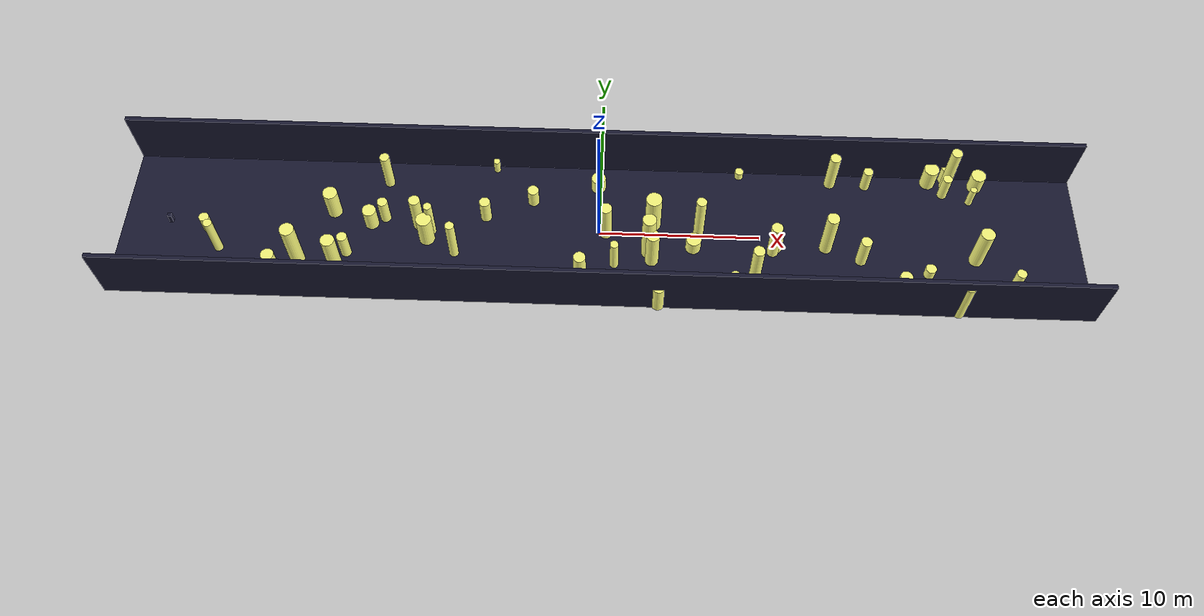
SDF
<?xml version="1.0"?>
<sdf version="1.4">
  <world name="default">
    <gui>
      <camera name="user_camera">
        <pose>-20 -30 40 0 0.66 0.83</pose>
      </camera>
    </gui>
    <include>
      <uri>model://ground_plane</uri>
    </include>
    <include>
      <uri>model://sun</uri>
    </include>
    <scene>
      <shadows>0</shadows>
    </scene>
    <model name="forest">
      <static>true</static>
      <link name="cylinder0">
        <pose>6.1851615178203545 0.01012238206317484 1.973644305754149 0 0 0 </pose>
        <visual name="visual">
          <geometry>
            <cylinder>
              <radius>0.3143362712005339</radius>
              <length>3.947288611508298</length>
            </cylinder>
          </geometry>
          <material>
            <ambient>0.6 0.6 0.6 1</ambient>
            <diffuse>1 1 0.5 1</diffuse>
            <specular>0 0 0</specular>
            <emissive>0 0 0 1</emissive>
          </material>
        </visual>
        <collision name="collision">
          <geometry>
            <cylinder>
              <radius>0.3143362712005339</radius>
              <length>3.947288611508298</length>
            </cylinder>
          </geometry>
          <max_contacts>0</max_contacts>
        </collision>
      </link>
      <link name="cylinder1">
        <pose>3.3563123634522007 0.7603276239569992 1.468062799599124 0 0 0 </pose>
        <visual name="visual">
          <geometry>
            <cylinder>
              <radius>0.49182506034060663</radius>
              <length>2.936125599198248</length>
            </cylinder>
          </geometry>
          <material>
            <ambient>0.6 0.6 0.6 1</ambient>
            <diffuse>1 1 0.5 1</diffuse>
            <specular>0 0 0</specular>
            <emissive>0 0 0 1</emissive>
          </material>
        </visual>
        <collision name="collision">
          <geometry>
            <cylinder>
              <radius>0.49182506034060663</radius>
              <length>2.936125599198248</length>
            </cylinder>
          </geometry>
          <max_contacts>0</max_contacts>
        </collision>
      </link>
      <link name="cylinder2">
        <pose>9.634692400923925 -2.7680734009443277 1.527600749912312 0 0 0 </pose>
        <visual name="visual">
          <geometry>
            <cylinder>
              <radius>0.3513397835030063</radius>
              <length>3.055201499824624</length>
            </cylinder>
          </geometry>
          <material>
            <ambient>0.6 0.6 0.6 1</ambient>
            <diffuse>1 1 0.5 1</diffuse>
            <specular>0 0 0</specular>
            <emissive>0 0 0 1</emissive>
          </material>
        </visual>
        <collision name="collision">
          <geometry>
            <cylinder>
              <radius>0.3513397835030063</radius>
              <length>3.055201499824624</length>
            </cylinder>
          </geometry>
          <max_contacts>0</max_contacts>
        </collision>
      </link>
      <link name="cylinder3">
        <pose>0.42461360393490466 -0.041475829389736596 1.506021428526016 0 0 0 </pose>
        <visual name="visual">
          <geometry>
            <cylinder>
              <radius>0.36728122937832397</radius>
              <length>3.012042857052032</length>
            </cylinder>
          </geometry>
          <material>
            <ambient>0.6 0.6 0.6 1</ambient>
            <diffuse>1 1 0.5 1</diffuse>
            <specular>0 0 0</specular>
            <emissive>0 0 0 1</emissive>
          </material>
        </visual>
        <collision name="collision">
          <geometry>
            <cylinder>
              <radius>0.36728122937832397</radius>
              <length>3.012042857052032</length>
            </cylinder>
          </geometry>
          <max_contacts>0</max_contacts>
        </collision>
      </link>
      <link name="cylinder4">
        <pose>-16.77597741580695 1.0094930790067718 1.1069195980845274 0 0 0 </pose>
        <visual name="visual">
          <geometry>
            <cylinder>
              <radius>0.4496982010385833</radius>
              <length>2.213839196169055</length>
            </cylinder>
          </geometry>
          <material>
            <ambient>0.6 0.6 0.6 1</ambient>
            <diffuse>1 1 0.5 1</diffuse>
            <specular>0 0 0</specular>
            <emissive>0 0 0 1</emissive>
          </material>
        </visual>
        <collision name="collision">
          <geometry>
            <cylinder>
              <radius>0.4496982010385833</radius>
              <length>2.213839196169055</length>
            </cylinder>
          </geometry>
          <max_contacts>0</max_contacts>
        </collision>
      </link>
      <link name="cylinder5">
        <pose>20.956145567827654 4.49577039634651 0.8331088127608 0 0 0 </pose>
        <visual name="visual">
          <geometry>
            <cylinder>
              <radius>0.4672983535695867</radius>
              <length>1.6662176255216</length>
            </cylinder>
          </geometry>
          <material>
            <ambient>0.6 0.6 0.6 1</ambient>
            <diffuse>1 1 0.5 1</diffuse>
            <specular>0 0 0</specular>
            <emissive>0 0 0 1</emissive>
          </material>
        </visual>
        <collision name="collision">
          <geometry>
            <cylinder>
              <radius>0.4672983535695867</radius>
              <length>1.6662176255216</length>
            </cylinder>
          </geometry>
          <max_contacts>0</max_contacts>
        </collision>
      </link>
      <link name="cylinder6">
        <pose>14.66616931089942 4.205875397991685 1.4808012365864143 0 0 0 </pose>
        <visual name="visual">
          <geometry>
            <cylinder>
              <radius>0.33839954903807495</radius>
              <length>2.9616024731728285</length>
            </cylinder>
          </geometry>
          <material>
            <ambient>0.6 0.6 0.6 1</ambient>
            <diffuse>1 1 0.5 1</diffuse>
            <specular>0 0 0</specular>
            <emissive>0 0 0 1</emissive>
          </material>
        </visual>
        <collision name="collision">
          <geometry>
            <cylinder>
              <radius>0.33839954903807495</radius>
              <length>2.9616024731728285</length>
            </cylinder>
          </geometry>
          <max_contacts>0</max_contacts>
        </collision>
      </link>
      <link name="cylinder7">
        <pose>-10.487041618268833 -0.20477472006829167 1.4476259934840163 0 0 0 </pose>
        <visual name="visual">
          <geometry>
            <cylinder>
              <radius>0.25467773154693096</radius>
              <length>2.8952519869680327</length>
            </cylinder>
          </geometry>
          <material>
            <ambient>0.6 0.6 0.6 1</ambient>
            <diffuse>1 1 0.5 1</diffuse>
            <specular>0 0 0</specular>
            <emissive>0 0 0 1</emissive>
          </material>
        </visual>
        <collision name="collision">
          <geometry>
            <cylinder>
              <radius>0.25467773154693096</radius>
              <length>2.8952519869680327</length>
            </cylinder>
          </geometry>
          <max_contacts>0</max_contacts>
        </collision>
      </link>
      <link name="cylinder8">
        <pose>3.3079360836047798 -1.8801686026693765 1.4944963264249105 0 0 0 </pose>
        <visual name="visual">
          <geometry>
            <cylinder>
              <radius>0.40851436443906497</radius>
              <length>2.988992652849821</length>
            </cylinder>
          </geometry>
          <material>
            <ambient>0.6 0.6 0.6 1</ambient>
            <diffuse>1 1 0.5 1</diffuse>
            <specular>0 0 0</specular>
            <emissive>0 0 0 1</emissive>
          </material>
        </visual>
        <collision name="collision">
          <geometry>
            <cylinder>
              <radius>0.40851436443906497</radius>
              <length>2.988992652849821</length>
            </cylinder>
          </geometry>
          <max_contacts>0</max_contacts>
        </collision>
      </link>
      <link name="cylinder9">
        <pose>8.43402431614144 -3.0862559513980803 0.3389459926020051 0 0 0 </pose>
        <visual name="visual">
          <geometry>
            <cylinder>
              <radius>0.28574654914168734</radius>
              <length>0.6778919852040102</length>
            </cylinder>
          </geometry>
          <material>
            <ambient>0.6 0.6 0.6 1</ambient>
            <diffuse>1 1 0.5 1</diffuse>
            <specular>0 0 0</specular>
            <emissive>0 0 0 1</emissive>
          </material>
        </visual>
        <collision name="collision">
          <geometry>
            <cylinder>
              <radius>0.28574654914168734</radius>
              <length>0.6778919852040102</length>
            </cylinder>
          </geometry>
          <max_contacts>0</max_contacts>
        </collision>
      </link>
      <link name="cylinder10">
        <pose>-8.94467446319683 -1.7707961555916674 1.634926186341705 0 0 0 </pose>
        <visual name="visual">
          <geometry>
            <cylinder>
              <radius>0.2781926882157224</radius>
              <length>3.26985237268341</length>
            </cylinder>
          </geometry>
          <material>
            <ambient>0.6 0.6 0.6 1</ambient>
            <diffuse>1 1 0.5 1</diffuse>
            <specular>0 0 0</specular>
            <emissive>0 0 0 1</emissive>
          </material>
        </visual>
        <collision name="collision">
          <geometry>
            <cylinder>
              <radius>0.2781926882157224</radius>
              <length>3.26985237268341</length>
            </cylinder>
          </geometry>
          <max_contacts>0</max_contacts>
        </collision>
      </link>
      <link name="cylinder11">
        <pose>-14.317766191993453 0.20482404543756694 0.8064195369339395 0 0 0 </pose>
        <visual name="visual">
          <geometry>
            <cylinder>
              <radius>0.4282743248262628</radius>
              <length>1.612839073867879</length>
            </cylinder>
          </geometry>
          <material>
            <ambient>0.6 0.6 0.6 1</ambient>
            <diffuse>1 1 0.5 1</diffuse>
            <specular>0 0 0</specular>
            <emissive>0 0 0 1</emissive>
          </material>
        </visual>
        <collision name="collision">
          <geometry>
            <cylinder>
              <radius>0.4282743248262628</radius>
              <length>1.612839073867879</length>
            </cylinder>
          </geometry>
          <max_contacts>0</max_contacts>
        </collision>
      </link>
      <link name="cylinder12">
        <pose>3.2440089467752493 -4.03036251528966 0.6624261148745689 0 0 0 </pose>
        <visual name="visual">
          <geometry>
            <cylinder>
              <radius>0.3711236836113828</radius>
              <length>1.3248522297491379</length>
            </cylinder>
          </geometry>
          <material>
            <ambient>0.6 0.6 0.6 1</ambient>
            <diffuse>1 1 0.5 1</diffuse>
            <specular>0 0 0</specular>
            <emissive>0 0 0 1</emissive>
          </material>
        </visual>
        <collision name="collision">
          <geometry>
            <cylinder>
              <radius>0.3711236836113828</radius>
              <length>1.3248522297491379</length>
            </cylinder>
          </geometry>
          <max_contacts>0</max_contacts>
        </collision>
      </link>
      <link name="cylinder13">
        <pose>16.90496323968513 4.103084479156303 0.8781217229010607 0 0 0 </pose>
        <visual name="visual">
          <geometry>
            <cylinder>
              <radius>0.29899561276525266</radius>
              <length>1.7562434458021214</length>
            </cylinder>
          </geometry>
          <material>
            <ambient>0.6 0.6 0.6 1</ambient>
            <diffuse>1 1 0.5 1</diffuse>
            <specular>0 0 0</specular>
            <emissive>0 0 0 1</emissive>
          </material>
        </visual>
        <collision name="collision">
          <geometry>
            <cylinder>
              <radius>0.29899561276525266</radius>
              <length>1.7562434458021214</length>
            </cylinder>
          </geometry>
          <max_contacts>0</max_contacts>
        </collision>
      </link>
      <link name="cylinder14">
        <pose>13.133131546107748 -4.8578908092906055 1.453891900803789 0 0 0 </pose>
        <visual name="visual">
          <geometry>
            <cylinder>
              <radius>0.2591846759559525</radius>
              <length>2.907783801607578</length>
            </cylinder>
          </geometry>
          <material>
            <ambient>0.6 0.6 0.6 1</ambient>
            <diffuse>1 1 0.5 1</diffuse>
            <specular>0 0 0</specular>
            <emissive>0 0 0 1</emissive>
          </material>
        </visual>
        <collision name="collision">
          <geometry>
            <cylinder>
              <radius>0.2591846759559525</radius>
              <length>2.907783801607578</length>
            </cylinder>
          </geometry>
          <max_contacts>0</max_contacts>
        </collision>
      </link>
      <link name="cylinder15">
        <pose>-6.741715773764263 4.581718965008889 0.5219292145915578 0 0 0 </pose>
        <visual name="visual">
          <geometry>
            <cylinder>
              <radius>0.2017183557688264</radius>
              <length>1.0438584291831157</length>
            </cylinder>
          </geometry>
          <material>
            <ambient>0.6 0.6 0.6 1</ambient>
            <diffuse>1 1 0.5 1</diffuse>
            <specular>0 0 0</specular>
            <emissive>0 0 0 1</emissive>
          </material>
        </visual>
        <collision name="collision">
          <geometry>
            <cylinder>
              <radius>0.2017183557688264</radius>
              <length>1.0438584291831157</length>
            </cylinder>
          </geometry>
          <max_contacts>0</max_contacts>
        </collision>
      </link>
      <link name="cylinder16">
        <pose>22.049903994788266 4.312598322018152 1.8669690180793763 0 0 0 </pose>
        <visual name="visual">
          <geometry>
            <cylinder>
              <radius>0.32997237631969756</radius>
              <length>3.7339380361587526</length>
            </cylinder>
          </geometry>
          <material>
            <ambient>0.6 0.6 0.6 1</ambient>
            <diffuse>1 1 0.5 1</diffuse>
            <specular>0 0 0</specular>
            <emissive>0 0 0 1</emissive>
          </material>
        </visual>
        <collision name="collision">
          <geometry>
            <cylinder>
              <radius>0.32997237631969756</radius>
              <length>3.7339380361587526</length>
            </cylinder>
          </geometry>
          <max_contacts>0</max_contacts>
        </collision>
      </link>
      <link name="cylinder17">
        <pose>5.871561635681282 -0.8688870413642285 0.53813471589123 0 0 0 </pose>
        <visual name="visual">
          <geometry>
            <cylinder>
              <radius>0.47050805943140817</radius>
              <length>1.07626943178246</length>
            </cylinder>
          </geometry>
          <material>
            <ambient>0.6 0.6 0.6 1</ambient>
            <diffuse>1 1 0.5 1</diffuse>
            <specular>0 0 0</specular>
            <emissive>0 0 0 1</emissive>
          </material>
        </visual>
        <collision name="collision">
          <geometry>
            <cylinder>
              <radius>0.47050805943140817</radius>
              <length>1.07626943178246</length>
            </cylinder>
          </geometry>
          <max_contacts>0</max_contacts>
        </collision>
      </link>
      <link name="cylinder18">
        <pose>10.803037338037136 -1.0168689247895522 1.4597147699723145 0 0 0 </pose>
        <visual name="visual">
          <geometry>
            <cylinder>
              <radius>0.35113903693372395</radius>
              <length>2.919429539944629</length>
            </cylinder>
          </geometry>
          <material>
            <ambient>0.6 0.6 0.6 1</ambient>
            <diffuse>1 1 0.5 1</diffuse>
            <specular>0 0 0</specular>
            <emissive>0 0 0 1</emissive>
          </material>
        </visual>
        <collision name="collision">
          <geometry>
            <cylinder>
              <radius>0.35113903693372395</radius>
              <length>2.919429539944629</length>
            </cylinder>
          </geometry>
          <max_contacts>0</max_contacts>
        </collision>
      </link>
      <link name="cylinder19">
        <pose>-7.160224490040374 0.9289408096207632 0.9072653129543504 0 0 0 </pose>
        <visual name="visual">
          <geometry>
            <cylinder>
              <radius>0.3385485253408095</radius>
              <length>1.8145306259087008</length>
            </cylinder>
          </geometry>
          <material>
            <ambient>0.6 0.6 0.6 1</ambient>
            <diffuse>1 1 0.5 1</diffuse>
            <specular>0 0 0</specular>
            <emissive>0 0 0 1</emissive>
          </material>
        </visual>
        <collision name="collision">
          <geometry>
            <cylinder>
              <radius>0.3385485253408095</radius>
              <length>1.8145306259087008</length>
            </cylinder>
          </geometry>
          <max_contacts>0</max_contacts>
        </collision>
      </link>
      <link name="cylinder20">
        <pose>23.3348255042468 -1.196685192793121 1.5955318215275929 0 0 0 </pose>
        <visual name="visual">
          <geometry>
            <cylinder>
              <radius>0.4274191575940651</radius>
              <length>3.1910636430551858</length>
            </cylinder>
          </geometry>
          <material>
            <ambient>0.6 0.6 0.6 1</ambient>
            <diffuse>1 1 0.5 1</diffuse>
            <specular>0 0 0</specular>
            <emissive>0 0 0 1</emissive>
          </material>
        </visual>
        <collision name="collision">
          <geometry>
            <cylinder>
              <radius>0.4274191575940651</radius>
              <length>3.1910636430551858</length>
            </cylinder>
          </geometry>
          <max_contacts>0</max_contacts>
        </collision>
      </link>
      <link name="cylinder21">
        <pose>11.043578140141754 -0.7756414852837157 0.8439872266810028 0 0 0 </pose>
        <visual name="visual">
          <geometry>
            <cylinder>
              <radius>0.3259995439215405</radius>
              <length>1.6879744533620056</length>
            </cylinder>
          </geometry>
          <material>
            <ambient>0.6 0.6 0.6 1</ambient>
            <diffuse>1 1 0.5 1</diffuse>
            <specular>0 0 0</specular>
            <emissive>0 0 0 1</emissive>
          </material>
        </visual>
        <collision name="collision">
          <geometry>
            <cylinder>
              <radius>0.3259995439215405</radius>
              <length>1.6879744533620056</length>
            </cylinder>
          </geometry>
          <max_contacts>0</max_contacts>
        </collision>
      </link>
      <link name="cylinder22">
        <pose>0.28521328135650137 -3.9120650103262147 0.6012938356300376 0 0 0 </pose>
        <visual name="visual">
          <geometry>
            <cylinder>
              <radius>0.48375672393437963</radius>
              <length>1.2025876712600752</length>
            </cylinder>
          </geometry>
          <material>
            <ambient>0.6 0.6 0.6 1</ambient>
            <diffuse>1 1 0.5 1</diffuse>
            <specular>0 0 0</specular>
            <emissive>0 0 0 1</emissive>
          </material>
        </visual>
        <collision name="collision">
          <geometry>
            <cylinder>
              <radius>0.48375672393437963</radius>
              <length>1.2025876712600752</length>
            </cylinder>
          </geometry>
          <max_contacts>0</max_contacts>
        </collision>
      </link>
      <link name="cylinder23">
        <pose>22.15560953853479 4.819775510697129 0.6973211961515273 0 0 0 </pose>
        <visual name="visual">
          <geometry>
            <cylinder>
              <radius>0.4688436727498334</radius>
              <length>1.3946423923030546</length>
            </cylinder>
          </geometry>
          <material>
            <ambient>0.6 0.6 0.6 1</ambient>
            <diffuse>1 1 0.5 1</diffuse>
            <specular>0 0 0</specular>
            <emissive>0 0 0 1</emissive>
          </material>
        </visual>
        <collision name="collision">
          <geometry>
            <cylinder>
              <radius>0.4688436727498334</radius>
              <length>1.3946423923030546</length>
            </cylinder>
          </geometry>
          <max_contacts>0</max_contacts>
        </collision>
      </link>
      <link name="cylinder24">
        <pose>23.43958041693689 3.0803171643058285 0.7827030225271052 0 0 0 </pose>
        <visual name="visual">
          <geometry>
            <cylinder>
              <radius>0.20537829501903337</radius>
              <length>1.5654060450542104</length>
            </cylinder>
          </geometry>
          <material>
            <ambient>0.6 0.6 0.6 1</ambient>
            <diffuse>1 1 0.5 1</diffuse>
            <specular>0 0 0</specular>
            <emissive>0 0 0 1</emissive>
          </material>
        </visual>
        <collision name="collision">
          <geometry>
            <cylinder>
              <radius>0.20537829501903337</radius>
              <length>1.5654060450542104</length>
            </cylinder>
          </geometry>
          <max_contacts>0</max_contacts>
        </collision>
      </link>
      <link name="cylinder25">
        <pose>24.756650985080107 -4.1300671709199275 1.8274763778387073 0 0 0 </pose>
        <visual name="visual">
          <geometry>
            <cylinder>
              <radius>0.28690950322904696</radius>
              <length>3.6549527556774146</length>
            </cylinder>
          </geometry>
          <material>
            <ambient>0.6 0.6 0.6 1</ambient>
            <diffuse>1 1 0.5 1</diffuse>
            <specular>0 0 0</specular>
            <emissive>0 0 0 1</emissive>
          </material>
        </visual>
        <collision name="collision">
          <geometry>
            <cylinder>
              <radius>0.28690950322904696</radius>
              <length>3.6549527556774146</length>
            </cylinder>
          </geometry>
          <max_contacts>0</max_contacts>
        </collision>
      </link>
      <link name="cylinder26">
        <pose>-13.504360424235673 0.6491291768506589 0.9626925908582371 0 0 0 </pose>
        <visual name="visual">
          <geometry>
            <cylinder>
              <radius>0.3213236361919179</radius>
              <length>1.9253851817164742</length>
            </cylinder>
          </geometry>
          <material>
            <ambient>0.6 0.6 0.6 1</ambient>
            <diffuse>1 1 0.5 1</diffuse>
            <specular>0 0 0</specular>
            <emissive>0 0 0 1</emissive>
          </material>
        </visual>
        <collision name="collision">
          <geometry>
            <cylinder>
              <radius>0.3213236361919179</radius>
              <length>1.9253851817164742</length>
            </cylinder>
          </geometry>
          <max_contacts>0</max_contacts>
        </collision>
      </link>
      <link name="cylinder27">
        <pose>14.107244799552824 -0.6274908307705154 1.7647489597019552 0 0 0 </pose>
        <visual name="visual">
          <geometry>
            <cylinder>
              <radius>0.38439673377839634</radius>
              <length>3.5294979194039104</length>
            </cylinder>
          </geometry>
          <material>
            <ambient>0.6 0.6 0.6 1</ambient>
            <diffuse>1 1 0.5 1</diffuse>
            <specular>0 0 0</specular>
            <emissive>0 0 0 1</emissive>
          </material>
        </visual>
        <collision name="collision">
          <geometry>
            <cylinder>
              <radius>0.38439673377839634</radius>
              <length>3.5294979194039104</length>
            </cylinder>
          </geometry>
          <max_contacts>0</max_contacts>
        </collision>
      </link>
      <link name="cylinder28">
        <pose>-15.643634212447438 -1.9528257745769393 0.9597716808949848 0 0 0 </pose>
        <visual name="visual">
          <geometry>
            <cylinder>
              <radius>0.3233556178291388</radius>
              <length>1.9195433617899695</length>
            </cylinder>
          </geometry>
          <material>
            <ambient>0.6 0.6 0.6 1</ambient>
            <diffuse>1 1 0.5 1</diffuse>
            <specular>0 0 0</specular>
            <emissive>0 0 0 1</emissive>
          </material>
        </visual>
        <collision name="collision">
          <geometry>
            <cylinder>
              <radius>0.3233556178291388</radius>
              <length>1.9195433617899695</length>
            </cylinder>
          </geometry>
          <max_contacts>0</max_contacts>
        </collision>
      </link>
      <link name="cylinder29">
        <pose>16.231474396186826 -1.460437948722416 1.1751434724826715 0 0 0 </pose>
        <visual name="visual">
          <geometry>
            <cylinder>
              <radius>0.34073343700320513</radius>
              <length>2.350286944965343</length>
            </cylinder>
          </geometry>
          <material>
            <ambient>0.6 0.6 0.6 1</ambient>
            <diffuse>1 1 0.5 1</diffuse>
            <specular>0 0 0</specular>
            <emissive>0 0 0 1</emissive>
          </material>
        </visual>
        <collision name="collision">
          <geometry>
            <cylinder>
              <radius>0.34073343700320513</radius>
              <length>2.350286944965343</length>
            </cylinder>
          </geometry>
          <max_contacts>0</max_contacts>
        </collision>
      </link>
      <link name="cylinder30">
        <pose>-1.0643038840462182 -3.328943440538067 1.3289710508419124 0 0 0 </pose>
        <visual name="visual">
          <geometry>
            <cylinder>
              <radius>0.373126208522241</radius>
              <length>2.6579421016838247</length>
            </cylinder>
          </geometry>
          <material>
            <ambient>0.6 0.6 0.6 1</ambient>
            <diffuse>1 1 0.5 1</diffuse>
            <specular>0 0 0</specular>
            <emissive>0 0 0 1</emissive>
          </material>
        </visual>
        <collision name="collision">
          <geometry>
            <cylinder>
              <radius>0.373126208522241</radius>
              <length>2.6579421016838247</length>
            </cylinder>
          </geometry>
          <max_contacts>0</max_contacts>
        </collision>
      </link>
      <link name="cylinder31">
        <pose>20.34627467130872 -2.292797048027071 0.398896727747987 0 0 0 </pose>
        <visual name="visual">
          <geometry>
            <cylinder>
              <radius>0.3289892159989948</radius>
              <length>0.797793455495974</length>
            </cylinder>
          </geometry>
          <material>
            <ambient>0.6 0.6 0.6 1</ambient>
            <diffuse>1 1 0.5 1</diffuse>
            <specular>0 0 0</specular>
            <emissive>0 0 0 1</emissive>
          </material>
        </visual>
        <collision name="collision">
          <geometry>
            <cylinder>
              <radius>0.3289892159989948</radius>
              <length>0.797793455495974</length>
            </cylinder>
          </geometry>
          <max_contacts>0</max_contacts>
        </collision>
      </link>
      <link name="cylinder32">
        <pose>-16.14716926916493 -2.9564190548324 1.5602678975853999 0 0 0 </pose>
        <visual name="visual">
          <geometry>
            <cylinder>
              <radius>0.42694269268535645</radius>
              <length>3.1205357951707997</length>
            </cylinder>
          </geometry>
          <material>
            <ambient>0.6 0.6 0.6 1</ambient>
            <diffuse>1 1 0.5 1</diffuse>
            <specular>0 0 0</specular>
            <emissive>0 0 0 1</emissive>
          </material>
        </visual>
        <collision name="collision">
          <geometry>
            <cylinder>
              <radius>0.42694269268535645</radius>
              <length>3.1205357951707997</length>
            </cylinder>
          </geometry>
          <max_contacts>0</max_contacts>
        </collision>
      </link>
      <link name="cylinder33">
        <pose>-11.336007554904842 0.16873384560183968 1.4743161967866856 0 0 0 </pose>
        <visual name="visual">
          <geometry>
            <cylinder>
              <radius>0.3497373134213161</radius>
              <length>2.948632393573371</length>
            </cylinder>
          </geometry>
          <material>
            <ambient>0.6 0.6 0.6 1</ambient>
            <diffuse>1 1 0.5 1</diffuse>
            <specular>0 0 0</specular>
            <emissive>0 0 0 1</emissive>
          </material>
        </visual>
        <collision name="collision">
          <geometry>
            <cylinder>
              <radius>0.3497373134213161</radius>
              <length>2.948632393573371</length>
            </cylinder>
          </geometry>
          <max_contacts>0</max_contacts>
        </collision>
      </link>
      <link name="cylinder34">
        <pose>0.9943197320847581 -2.2540239402844033 1.2349356861648377 0 0 0 </pose>
        <visual name="visual">
          <geometry>
            <cylinder>
              <radius>0.25281788922922455</radius>
              <length>2.4698713723296755</length>
            </cylinder>
          </geometry>
          <material>
            <ambient>0.6 0.6 0.6 1</ambient>
            <diffuse>1 1 0.5 1</diffuse>
            <specular>0 0 0</specular>
            <emissive>0 0 0 1</emissive>
          </material>
        </visual>
        <collision name="collision">
          <geometry>
            <cylinder>
              <radius>0.25281788922922455</radius>
              <length>2.4698713723296755</length>
            </cylinder>
          </geometry>
          <max_contacts>0</max_contacts>
        </collision>
      </link>
      <link name="cylinder35">
        <pose>-0.14339529882019164 3.3982736171390737 0.5848074890946331 0 0 0 </pose>
        <visual name="visual">
          <geometry>
            <cylinder>
              <radius>0.44849467833553003</radius>
              <length>1.1696149781892662</length>
            </cylinder>
          </geometry>
          <material>
            <ambient>0.6 0.6 0.6 1</ambient>
            <diffuse>1 1 0.5 1</diffuse>
            <specular>0 0 0</specular>
            <emissive>0 0 0 1</emissive>
          </material>
        </visual>
        <collision name="collision">
          <geometry>
            <cylinder>
              <radius>0.44849467833553003</radius>
              <length>1.1696149781892662</length>
            </cylinder>
          </geometry>
          <max_contacts>0</max_contacts>
        </collision>
      </link>
      <link name="cylinder36">
        <pose>-23.63132476482751 -1.8767560861055568 1.463304232041594 0 0 0 </pose>
        <visual name="visual">
          <geometry>
            <cylinder>
              <radius>0.27071517060951417</radius>
              <length>2.926608464083188</length>
            </cylinder>
          </geometry>
          <material>
            <ambient>0.6 0.6 0.6 1</ambient>
            <diffuse>1 1 0.5 1</diffuse>
            <specular>0 0 0</specular>
            <emissive>0 0 0 1</emissive>
          </material>
        </visual>
        <collision name="collision">
          <geometry>
            <cylinder>
              <radius>0.27071517060951417</radius>
              <length>2.926608464083188</length>
            </cylinder>
          </geometry>
          <max_contacts>0</max_contacts>
        </collision>
      </link>
      <link name="cylinder37">
        <pose>-4.243089854215356 2.209159178585132 0.6902694277041369 0 0 0 </pose>
        <visual name="visual">
          <geometry>
            <cylinder>
              <radius>0.3518073326609034</radius>
              <length>1.3805388554082738</length>
            </cylinder>
          </geometry>
          <material>
            <ambient>0.6 0.6 0.6 1</ambient>
            <diffuse>1 1 0.5 1</diffuse>
            <specular>0 0 0</specular>
            <emissive>0 0 0 1</emissive>
          </material>
        </visual>
        <collision name="collision">
          <geometry>
            <cylinder>
              <radius>0.3518073326609034</radius>
              <length>1.3805388554082738</length>
            </cylinder>
          </geometry>
          <max_contacts>0</max_contacts>
        </collision>
      </link>
      <link name="cylinder38">
        <pose>18.168307633068785 -4.277087994804402 1.575476296110207 0 0 0 </pose>
        <visual name="visual">
          <geometry>
            <cylinder>
              <radius>0.36697519078595847</radius>
              <length>3.150952592220414</length>
            </cylinder>
          </geometry>
          <material>
            <ambient>0.6 0.6 0.6 1</ambient>
            <diffuse>1 1 0.5 1</diffuse>
            <specular>0 0 0</specular>
            <emissive>0 0 0 1</emissive>
          </material>
        </visual>
        <collision name="collision">
          <geometry>
            <cylinder>
              <radius>0.36697519078595847</radius>
              <length>3.150952592220414</length>
            </cylinder>
          </geometry>
          <max_contacts>0</max_contacts>
        </collision>
      </link>
      <link name="cylinder39">
        <pose>23.949832240752094 4.281890907073976 0.7100233015296995 0 0 0 </pose>
        <visual name="visual">
          <geometry>
            <cylinder>
              <radius>0.4584917878070941</radius>
              <length>1.420046603059399</length>
            </cylinder>
          </geometry>
          <material>
            <ambient>0.6 0.6 0.6 1</ambient>
            <diffuse>1 1 0.5 1</diffuse>
            <specular>0 0 0</specular>
            <emissive>0 0 0 1</emissive>
          </material>
        </visual>
        <collision name="collision">
          <geometry>
            <cylinder>
              <radius>0.4584917878070941</radius>
              <length>1.420046603059399</length>
            </cylinder>
          </geometry>
          <max_contacts>0</max_contacts>
        </collision>
      </link>
      <link name="cylinder40">
        <pose>8.854420422798107 4.598808045026287 0.3292904377914424 0 0 0 </pose>
        <visual name="visual">
          <geometry>
            <cylinder>
              <radius>0.26356454148102576</radius>
              <length>0.6585808755828848</length>
            </cylinder>
          </geometry>
          <material>
            <ambient>0.6 0.6 0.6 1</ambient>
            <diffuse>1 1 0.5 1</diffuse>
            <specular>0 0 0</specular>
            <emissive>0 0 0 1</emissive>
          </material>
        </visual>
        <collision name="collision">
          <geometry>
            <cylinder>
              <radius>0.26356454148102576</radius>
              <length>0.6585808755828848</length>
            </cylinder>
          </geometry>
          <max_contacts>0</max_contacts>
        </collision>
      </link>
      <link name="cylinder41">
        <pose>-18.576993256589382 -2.538605255555575 1.7672199711792702 0 0 0 </pose>
        <visual name="visual">
          <geometry>
            <cylinder>
              <radius>0.43974801997598634</radius>
              <length>3.5344399423585404</length>
            </cylinder>
          </geometry>
          <material>
            <ambient>0.6 0.6 0.6 1</ambient>
            <diffuse>1 1 0.5 1</diffuse>
            <specular>0 0 0</specular>
            <emissive>0 0 0 1</emissive>
          </material>
        </visual>
        <collision name="collision">
          <geometry>
            <cylinder>
              <radius>0.43974801997598634</radius>
              <length>3.5344399423585404</length>
            </cylinder>
          </geometry>
          <max_contacts>0</max_contacts>
        </collision>
      </link>
      <link name="cylinder42">
        <pose>3.064849249445679 -1.2994838819380194 1.914521989578946 0 0 0 </pose>
        <visual name="visual">
          <geometry>
            <cylinder>
              <radius>0.41793079754766704</radius>
              <length>3.829043979157892</length>
            </cylinder>
          </geometry>
          <material>
            <ambient>0.6 0.6 0.6 1</ambient>
            <diffuse>1 1 0.5 1</diffuse>
            <specular>0 0 0</specular>
            <emissive>0 0 0 1</emissive>
          </material>
        </visual>
        <collision name="collision">
          <geometry>
            <cylinder>
              <radius>0.41793079754766704</radius>
              <length>3.829043979157892</length>
            </cylinder>
          </geometry>
          <max_contacts>0</max_contacts>
        </collision>
      </link>
      <link name="cylinder43">
        <pose>-19.559962668062802 -4.053863741753978 1.5529064187204709 0 0 0 </pose>
        <visual name="visual">
          <geometry>
            <cylinder>
              <radius>0.39471112330275426</radius>
              <length>3.1058128374409417</length>
            </cylinder>
          </geometry>
          <material>
            <ambient>0.6 0.6 0.6 1</ambient>
            <diffuse>1 1 0.5 1</diffuse>
            <specular>0 0 0</specular>
            <emissive>0 0 0 1</emissive>
          </material>
        </visual>
        <collision name="collision">
          <geometry>
            <cylinder>
              <radius>0.39471112330275426</radius>
              <length>3.1058128374409417</length>
            </cylinder>
          </geometry>
          <max_contacts>0</max_contacts>
        </collision>
      </link>
      <link name="cylinder44">
        <pose>21.80427363463383 3.6147277812357697 0.9539027978011461 0 0 0 </pose>
        <visual name="visual">
          <geometry>
            <cylinder>
              <radius>0.2952903882405789</radius>
              <length>1.9078055956022921</length>
            </cylinder>
          </geometry>
          <material>
            <ambient>0.6 0.6 0.6 1</ambient>
            <diffuse>1 1 0.5 1</diffuse>
            <specular>0 0 0</specular>
            <emissive>0 0 0 1</emissive>
          </material>
        </visual>
        <collision name="collision">
          <geometry>
            <cylinder>
              <radius>0.2952903882405789</radius>
              <length>1.9078055956022921</length>
            </cylinder>
          </geometry>
          <max_contacts>0</max_contacts>
        </collision>
      </link>
      <link name="cylinder45">
        <pose>-13.574917644020973 3.3267660868701494 1.4578424287500515 0 0 0 </pose>
        <visual name="visual">
          <geometry>
            <cylinder>
              <radius>0.3033538860101712</radius>
              <length>2.915684857500103</length>
            </cylinder>
          </geometry>
          <material>
            <ambient>0.6 0.6 0.6 1</ambient>
            <diffuse>1 1 0.5 1</diffuse>
            <specular>0 0 0</specular>
            <emissive>0 0 0 1</emissive>
          </material>
        </visual>
        <collision name="collision">
          <geometry>
            <cylinder>
              <radius>0.3033538860101712</radius>
              <length>2.915684857500103</length>
            </cylinder>
          </geometry>
          <max_contacts>0</max_contacts>
        </collision>
      </link>
      <link name="cylinder46">
        <pose>3.7041240349458775 -4.907793973586603 1.062448029306825 0 0 0 </pose>
        <visual name="visual">
          <geometry>
            <cylinder>
              <radius>0.4043016112248844</radius>
              <length>2.12489605861365</length>
            </cylinder>
          </geometry>
          <material>
            <ambient>0.6 0.6 0.6 1</ambient>
            <diffuse>1 1 0.5 1</diffuse>
            <specular>0 0 0</specular>
            <emissive>0 0 0 1</emissive>
          </material>
        </visual>
        <collision name="collision">
          <geometry>
            <cylinder>
              <radius>0.4043016112248844</radius>
              <length>2.12489605861365</length>
            </cylinder>
          </geometry>
          <max_contacts>0</max_contacts>
        </collision>
      </link>
      <link name="cylinder47">
        <pose>-24.54422069602011 -0.5029569556211735 0.693648374593463 0 0 0 </pose>
        <visual name="visual">
          <geometry>
            <cylinder>
              <radius>0.3102423020159029</radius>
              <length>1.387296749186926</length>
            </cylinder>
          </geometry>
          <material>
            <ambient>0.6 0.6 0.6 1</ambient>
            <diffuse>1 1 0.5 1</diffuse>
            <specular>0 0 0</specular>
            <emissive>0 0 0 1</emissive>
          </material>
        </visual>
        <collision name="collision">
          <geometry>
            <cylinder>
              <radius>0.3102423020159029</radius>
              <length>1.387296749186926</length>
            </cylinder>
          </geometry>
          <max_contacts>0</max_contacts>
        </collision>
      </link>
      <link name="cylinder48">
        <pose>21.823864777327188 -4.856478382666351 1.5884375099747918 0 0 0 </pose>
        <visual name="visual">
          <geometry>
            <cylinder>
              <radius>0.36680506747599884</radius>
              <length>3.1768750199495837</length>
            </cylinder>
          </geometry>
          <material>
            <ambient>0.6 0.6 0.6 1</ambient>
            <diffuse>1 1 0.5 1</diffuse>
            <specular>0 0 0</specular>
            <emissive>0 0 0 1</emissive>
          </material>
        </visual>
        <collision name="collision">
          <geometry>
            <cylinder>
              <radius>0.36680506747599884</radius>
              <length>3.1768750199495837</length>
            </cylinder>
          </geometry>
          <max_contacts>0</max_contacts>
        </collision>
      </link>
      <link name="cylinder49">
        <pose>-10.733888563834665 -0.7857433236865834 1.1577835031330392 0 0 0 </pose>
        <visual name="visual">
          <geometry>
            <cylinder>
              <radius>0.4794480782228856</radius>
              <length>2.3155670062660785</length>
            </cylinder>
          </geometry>
          <material>
            <ambient>0.6 0.6 0.6 1</ambient>
            <diffuse>1 1 0.5 1</diffuse>
            <specular>0 0 0</specular>
            <emissive>0 0 0 1</emissive>
          </material>
        </visual>
        <collision name="collision">
          <geometry>
            <cylinder>
              <radius>0.4794480782228856</radius>
              <length>2.3155670062660785</length>
            </cylinder>
          </geometry>
          <max_contacts>0</max_contacts>
        </collision>
      </link>
      <link name="cube0">
        <pose>0 5.0 2.0 0 0 0 </pose>
        <visual name="visual">
          <geometry>
            <box>
              <size>60.0 0.25 4.0</size>
            </box>
          </geometry>
          <material>
            <ambient>0.1 0.1 0.1 1</ambient>
            <diffuse>0.1 0.1 0.2 1</diffuse>
            <specular>0 0 0</specular>
            <emissive>0 0 0 1</emissive>
          </material>
        </visual>
        <collision name="collision">
          <geometry>
            <box>
              <size>60.0 0.25 4.0</size>
            </box>
          </geometry>
          <max_contacts>0</max_contacts>
        </collision>
      </link>
      <link name="cube1">
        <pose>0 -5.0 2.0 0 0 0 </pose>
        <visual name="visual">
          <geometry>
            <box>
              <size>60.0 0.25 4.0</size>
            </box>
          </geometry>
          <material>
            <ambient>0.1 0.1 0.1 1</ambient>
            <diffuse>0.1 0.1 0.2 1</diffuse>
            <specular>0 0 0</specular>
            <emissive>0 0 0 1</emissive>
          </material>
        </visual>
        <collision name="collision">
          <geometry>
            <box>
              <size>60.0 0.25 4.0</size>
            </box>
          </geometry>
          <max_contacts>0</max_contacts>
        </collision>
      </link>
      <link name="cube2">
        <pose>0 0 0.03125 0 0 0 </pose>
        <visual name="visual">
          <geometry>
            <box>
              <size>60.0 10 0.0625</size>
            </box>
          </geometry>
          <material>
            <ambient>0.1 0.1 0.1 1</ambient>
            <diffuse>0.1 0.1 0.2 1</diffuse>
            <specular>0 0 0</specular>
            <emissive>0 0 0 1</emissive>
          </material>
        </visual>
        <collision name="collision">
          <geometry>
            <box>
              <size>60.0 10 0.0625</size>
            </box>
          </geometry>
          <max_contacts>0</max_contacts>
        </collision>
      </link>
      <link name="cube3">
        <pose>-27.0 0.0 0.25 0 0 0 </pose>
        <visual name="visual">
          <geometry>
            <box>
              <size>0.25 0.25 1.0</size>
            </box>
          </geometry>
          <material>
            <ambient>0.1 0.1 0.1 1</ambient>
            <diffuse>0.1 0.1 0.2 1</diffuse>
            <specular>0 0 0</specular>
            <emissive>0 0 0 1</emissive>
          </material>
        </visual>
        <collision name="collision">
          <geometry>
            <box>
              <size>0.25 0.25 1.0</size>
            </box>
          </geometry>
          <max_contacts>0</max_contacts>
        </collision>
      </link>
    </model>
    <!-- Physics -->
    <physics name="default_physics" default="0" type="ode">
      <max_step_size>0.004</max_step_size>
      <real_time_factor>1</real_time_factor>
      <real_time_update_rate>250</real_time_update_rate>
      <gravity>0 0 -9.8</gravity>
      <magnetic_field>6e-06 2.3e-05 -4.2e-05</magnetic_field>
      <ode>
        <solver>
          <type>quick</type>
          <iters>1000</iters>
          <sor>1.3</sor>
          <use_dynamic_moi_rescaling>0</use_dynamic_moi_rescaling>
        </solver>
        <constraints>
          <cfm>0</cfm>
          <erp>0.2</erp>
          <contact_max_correcting_vel>100</contact_max_correcting_vel>
          <contact_surface_layer>0.001</contact_surface_layer>
        </constraints>
      </ode>
    </physics>
  </world>
</sdf>
